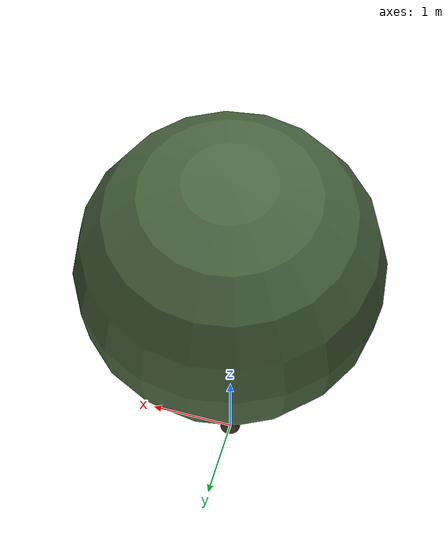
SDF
<?xml version="1.0" ?>
<sdf version="1.10">
  <model name="chene_vert_13">
    <static>true</static>

    <!-- Tronc -->
    <link name="trunk">
      <pose>0 0 1.5420116133444821 0 0 0</pose>
      <visual name="trunk_visual">
        <geometry>
          <cylinder>
            <radius>0.12432668347866815</radius>
            <length>3.0840232266889642</length>
          </cylinder>
        </geometry>
        <material>
          <ambient>0.29 0.22 0.16 1</ambient>
          <diffuse>0.29 0.22 0.16 1</diffuse>
          <specular>0.1 0.1 0.1 1</specular>
        </material>
      </visual>
      <collision name="trunk_collision">
        <geometry>
          <cylinder>
            <radius>0.12432668347866815</radius>
            <length>3.0840232266889642</length>
          </cylinder>
        </geometry>
      </collision>
    </link>

    <!-- Feuillage -->
    <link name="crown">
      <pose>0 0 3.642099978974813 0 0 0</pose>
      <visual name="crown_visual">
        <geometry>
          <sphere>
              <radius>1.8602558409528298</radius>
            </sphere>
        </geometry>
        <material>
          <ambient>0.29 0.40 0.25 1</ambient>
          <diffuse>0.29 0.40 0.25 1</diffuse>
          <specular>0.1 0.1 0.1 1</specular>
        </material>
      </visual>
      <collision name="crown_collision">
        <geometry>
          <sphere>
            <radius>1.488204672762264</radius>
          </sphere>
        </geometry>
      </collision>
    </link>

    <!-- Joint tronc-feuillage -->
    <joint name="trunk_crown_joint" type="fixed">
      <parent>trunk</parent>
      <child>crown</child>
    </joint>

  </model>
</sdf>
